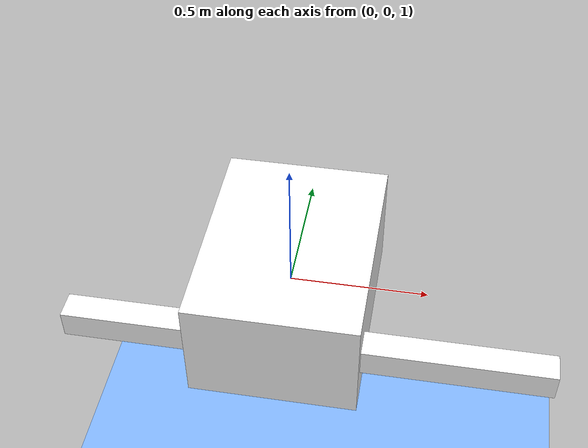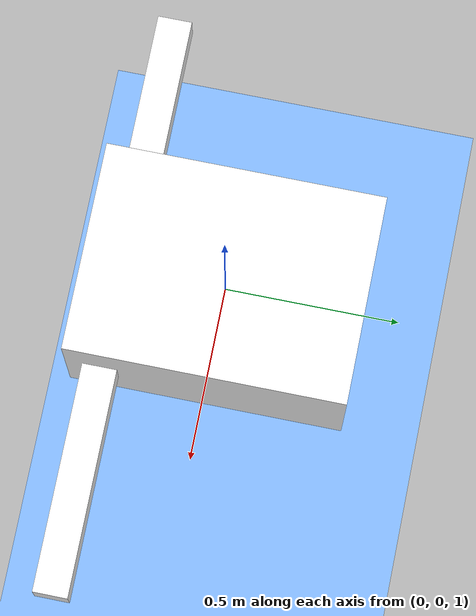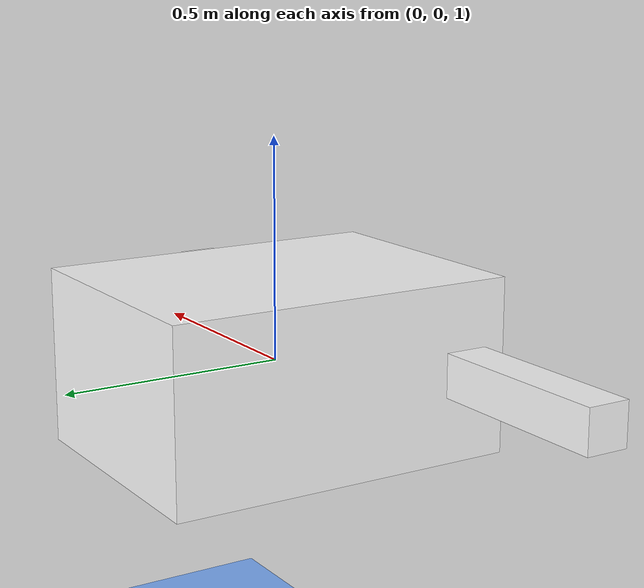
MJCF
<mujoco>
    <worldbody>
        <light diffuse=".5 .5 .5" pos="0 0 2" dir="0 -1 0" />
        <geom type="plane" size="10 10 0.1" rgba="0.5 0.7 1 1" />

        <body name="flappybird" pos="0 0 1" euler="0 0 0">
            <joint type="free" axis="0 0 0" pos="0 0 0" />
            <body name="body" pos="0 0 0" euler="0 0 0">
                <geom type="box" size=".3 .4 .2" rgba="1 1 1 1" mass="0.01" />
            </body>

            <body name="wing1" pos=".5 -.3 0" euler="0 -90 0">
                <joint name="joint1" type="hinge" axis="0 1 0" pos="0 0 .25" range="-45 45" />
                <geom type="box" size=".05 .05 0.4547520056831683" rgba="1 1 1 1" mass="0.5576403666822656" />

            </body>

            <body name="wing2" pos="-.5 -.3 0" euler="0 90 0">
                <joint name="joint2" type="hinge" axis="0 1 0" pos="0 0 .25" range="-45 45" />
                <geom type="box" size=".05 .05 0.24716610445054105" rgba="1 1 1 1" mass="0.5531993406128437" />

            </body>
        </body>
    </worldbody>

    <actuator>
        <motor joint="joint1" name="m1" gear="10" ctrllimited="true" ctrlrange="-5 5" />
        <motor joint="joint2" name="m2" gear="10" ctrllimited="true" ctrlrange="-5 5" />

</actuator>

</mujoco>
